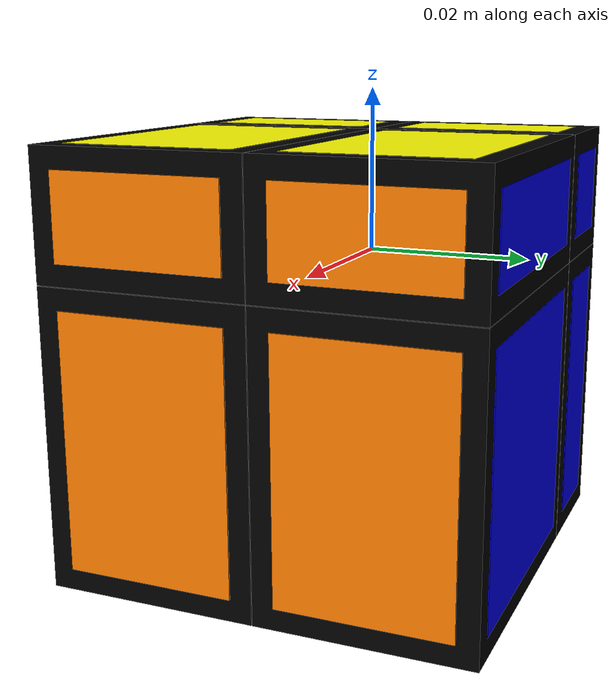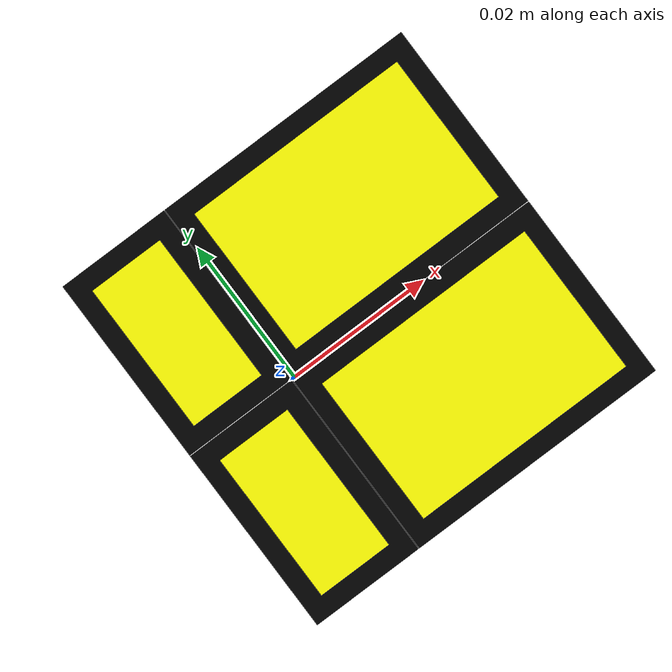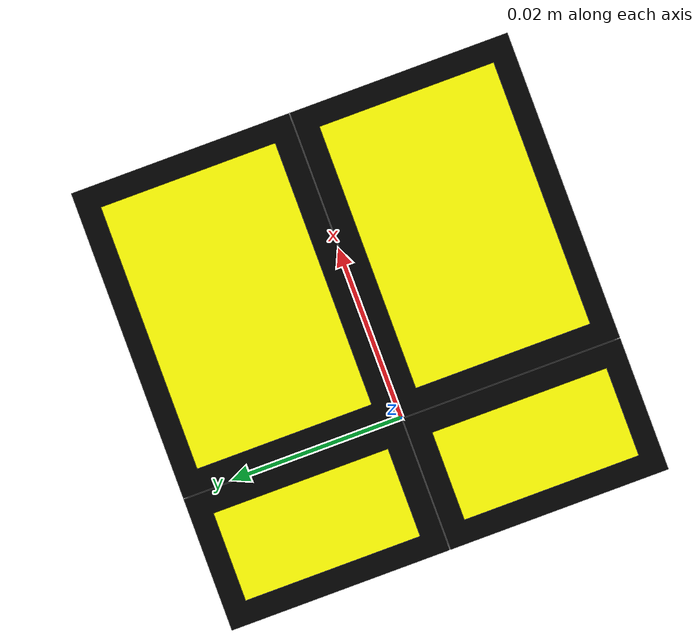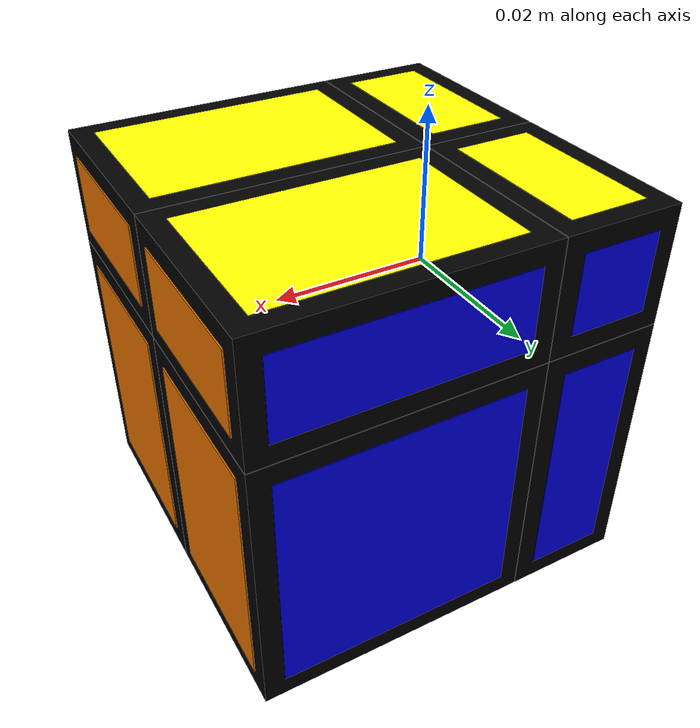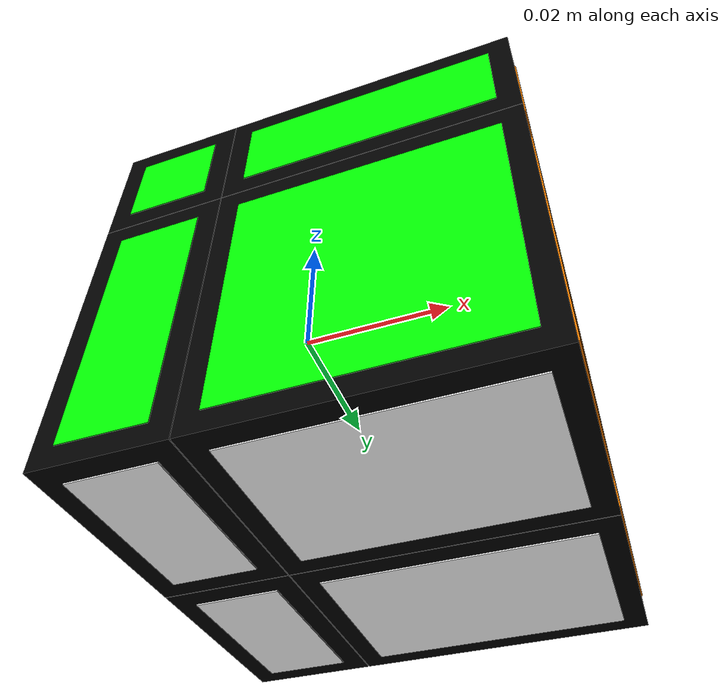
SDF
<?xml version="1.0" ?>
<sdf version="1.7">
	<model name="mirror_cube_2x2">
		<link name="center"/>
		<link name="cubie_0_0_0">
			<pose>-0.00755 -0.01255 -0.017550000000000003 0.0 0.0 0.0</pose>
			<inertial>
				<mass>0.005118750000000002</mass>
				<inertia>
					<ixx>7.891406250000004e-07</ixx>
					<ixy>0.0</ixy>
					<ixz>0.0</ixz>
					<iyy>6.185156250000003e-07</iyy>
					<iyz>0.0</iyz>
					<izz>3.625781250000002e-07</izz>
				</inertia>
			</inertial>
			<collision name="collision">
				<geometry>
					<box>
						<size>0.015000000000000001 0.025 0.035</size>
					</box>
				</geometry>
				<surface>
					<friction>
						<ode>
							<mu>0.6</mu>
							<mu2>0.6</mu2>
						</ode>
					</friction>
				</surface>
			</collision>
			<visual name="black">
				<geometry>
					<box>
						<size>0.015000000000000001 0.025 0.035</size>
					</box>
				</geometry>
				<material>
					<diffuse>0 0 0 1</diffuse>
				</material>
			</visual>
			<visual name="red">
				<pose>-0.007500000000000001 0.0 0.0 0.0 0.0 0.0</pose>
				<geometry>
					<box>
						<size>0.0001 0.02 0.03</size>
					</box>
				</geometry>
				<material>
					<diffuse>1 0 0 1</diffuse>
				</material>
			</visual>
			<visual name="green">
				<pose>0.0 -0.0125 0.0 0.0 0.0 0.0</pose>
				<geometry>
					<box>
						<size>0.01 0.0002 0.03</size>
					</box>
				</geometry>
				<material>
					<diffuse>0 1 0 1</diffuse>
				</material>
			</visual>
			<visual name="white">
				<pose>0.0 0.0 -0.0175 0.0 0.0 0.0</pose>
				<geometry>
					<box>
						<size>0.01 0.02 0.0003</size>
					</box>
				</geometry>
				<material>
					<diffuse>1 1 1 1</diffuse>
				</material>
			</visual>
		</link>
		<joint name="ball_0_0_0" type="ball">
			<pose>0.00755 0.01255 0.017550000000000003 -0.0 -0.0 -0.0</pose>
			<parent>center</parent>
			<child>cubie_0_0_0</child>
			<axis>
				<dynamics>
					<damping>0.1</damping>
				</dynamics>
				<limit>
					<effort>0</effort>
				</limit>
			</axis>
		</joint>
		<link name="cubie_0_0_1">
			<pose>-0.00755 -0.01255 0.007549999999999999 0.0 0.0 0.0</pose>
			<inertial>
				<mass>0.00219375</mass>
				<inertia>
					<ixx>1.55390625e-07</ixx>
					<ixy>0.0</ixy>
					<ixz>0.0</ixz>
					<iyy>8.2265625e-08</iyy>
					<iyz>0.0</iyz>
					<izz>1.5539062500000003e-07</izz>
				</inertia>
			</inertial>
			<collision name="collision">
				<geometry>
					<box>
						<size>0.015000000000000001 0.025 0.015</size>
					</box>
				</geometry>
				<surface>
					<friction>
						<ode>
							<mu>0.6</mu>
							<mu2>0.6</mu2>
						</ode>
					</friction>
				</surface>
			</collision>
			<visual name="black">
				<geometry>
					<box>
						<size>0.015000000000000001 0.025 0.015</size>
					</box>
				</geometry>
				<material>
					<diffuse>0 0 0 1</diffuse>
				</material>
			</visual>
			<visual name="red">
				<pose>-0.007500000000000001 0.0 0.0 0.0 0.0 0.0</pose>
				<geometry>
					<box>
						<size>0.0001 0.02 0.01</size>
					</box>
				</geometry>
				<material>
					<diffuse>1 0 0 1</diffuse>
				</material>
			</visual>
			<visual name="green">
				<pose>0.0 -0.0125 0.0 0.0 0.0 0.0</pose>
				<geometry>
					<box>
						<size>0.01 0.0002 0.01</size>
					</box>
				</geometry>
				<material>
					<diffuse>0 1 0 1</diffuse>
				</material>
			</visual>
			<visual name="yellow">
				<pose>0.0 0.0 0.0075 0.0 0.0 0.0</pose>
				<geometry>
					<box>
						<size>0.01 0.02 0.0001</size>
					</box>
				</geometry>
				<material>
					<diffuse>1 1 0 1</diffuse>
				</material>
			</visual>
		</link>
		<joint name="ball_0_0_1" type="ball">
			<pose>0.00755 0.01255 -0.007549999999999999 -0.0 -0.0 -0.0</pose>
			<parent>center</parent>
			<child>cubie_0_0_1</child>
			<axis>
				<dynamics>
					<damping>0.1</damping>
				</dynamics>
				<limit>
					<effort>0</effort>
				</limit>
			</axis>
		</joint>
		<link name="cubie_0_1_0">
			<pose>-0.00755 0.01255 -0.017550000000000003 0.0 0.0 0.0</pose>
			<inertial>
				<mass>0.005118750000000002</mass>
				<inertia>
					<ixx>7.891406250000004e-07</ixx>
					<ixy>0.0</ixy>
					<ixz>0.0</ixz>
					<iyy>6.185156250000003e-07</iyy>
					<iyz>0.0</iyz>
					<izz>3.625781250000002e-07</izz>
				</inertia>
			</inertial>
			<collision name="collision">
				<geometry>
					<box>
						<size>0.015000000000000001 0.025 0.035</size>
					</box>
				</geometry>
				<surface>
					<friction>
						<ode>
							<mu>0.6</mu>
							<mu2>0.6</mu2>
						</ode>
					</friction>
				</surface>
			</collision>
			<visual name="black">
				<geometry>
					<box>
						<size>0.015000000000000001 0.025 0.035</size>
					</box>
				</geometry>
				<material>
					<diffuse>0 0 0 1</diffuse>
				</material>
			</visual>
			<visual name="red">
				<pose>-0.007500000000000001 0.0 0.0 0.0 0.0 0.0</pose>
				<geometry>
					<box>
						<size>0.0001 0.02 0.03</size>
					</box>
				</geometry>
				<material>
					<diffuse>1 0 0 1</diffuse>
				</material>
			</visual>
			<visual name="blue">
				<pose>0.0 0.0125 0.0 0.0 0.0 0.0</pose>
				<geometry>
					<box>
						<size>0.01 0.0002 0.03</size>
					</box>
				</geometry>
				<material>
					<diffuse>0 0 1 1</diffuse>
				</material>
			</visual>
			<visual name="white">
				<pose>0.0 0.0 -0.0175 0.0 0.0 0.0</pose>
				<geometry>
					<box>
						<size>0.01 0.02 0.0003</size>
					</box>
				</geometry>
				<material>
					<diffuse>1 1 1 1</diffuse>
				</material>
			</visual>
		</link>
		<joint name="ball_0_1_0" type="ball">
			<pose>0.00755 -0.01255 0.017550000000000003 -0.0 -0.0 -0.0</pose>
			<parent>center</parent>
			<child>cubie_0_1_0</child>
			<axis>
				<dynamics>
					<damping>0.1</damping>
				</dynamics>
				<limit>
					<effort>0</effort>
				</limit>
			</axis>
		</joint>
		<link name="cubie_0_1_1">
			<pose>-0.00755 0.01255 0.007549999999999999 0.0 0.0 0.0</pose>
			<inertial>
				<mass>0.00219375</mass>
				<inertia>
					<ixx>1.55390625e-07</ixx>
					<ixy>0.0</ixy>
					<ixz>0.0</ixz>
					<iyy>8.2265625e-08</iyy>
					<iyz>0.0</iyz>
					<izz>1.5539062500000003e-07</izz>
				</inertia>
			</inertial>
			<collision name="collision">
				<geometry>
					<box>
						<size>0.015000000000000001 0.025 0.015</size>
					</box>
				</geometry>
				<surface>
					<friction>
						<ode>
							<mu>0.6</mu>
							<mu2>0.6</mu2>
						</ode>
					</friction>
				</surface>
			</collision>
			<visual name="black">
				<geometry>
					<box>
						<size>0.015000000000000001 0.025 0.015</size>
					</box>
				</geometry>
				<material>
					<diffuse>0 0 0 1</diffuse>
				</material>
			</visual>
			<visual name="red">
				<pose>-0.007500000000000001 0.0 0.0 0.0 0.0 0.0</pose>
				<geometry>
					<box>
						<size>0.0001 0.02 0.01</size>
					</box>
				</geometry>
				<material>
					<diffuse>1 0 0 1</diffuse>
				</material>
			</visual>
			<visual name="blue">
				<pose>0.0 0.0125 0.0 0.0 0.0 0.0</pose>
				<geometry>
					<box>
						<size>0.01 0.0002 0.01</size>
					</box>
				</geometry>
				<material>
					<diffuse>0 0 1 1</diffuse>
				</material>
			</visual>
			<visual name="yellow">
				<pose>0.0 0.0 0.0075 0.0 0.0 0.0</pose>
				<geometry>
					<box>
						<size>0.01 0.02 0.0001</size>
					</box>
				</geometry>
				<material>
					<diffuse>1 1 0 1</diffuse>
				</material>
			</visual>
		</link>
		<joint name="ball_0_1_1" type="ball">
			<pose>0.00755 -0.01255 -0.007549999999999999 -0.0 -0.0 -0.0</pose>
			<parent>center</parent>
			<child>cubie_0_1_1</child>
			<axis>
				<dynamics>
					<damping>0.1</damping>
				</dynamics>
				<limit>
					<effort>0</effort>
				</limit>
			</axis>
		</joint>
		<link name="cubie_1_0_0">
			<pose>0.017550000000000003 -0.01255 -0.017550000000000003 0.0 0.0 0.0</pose>
			<inertial>
				<mass>0.011943750000000003</mass>
				<inertia>
					<ixx>1.841328125000001e-06</ixx>
					<ixy>0.0</ixy>
					<ixz>0.0</ixz>
					<iyy>2.438515625000001e-06</iyy>
					<iyz>0.0</iyz>
					<izz>1.841328125000001e-06</izz>
				</inertia>
			</inertial>
			<collision name="collision">
				<geometry>
					<box>
						<size>0.035 0.025 0.035</size>
					</box>
				</geometry>
				<surface>
					<friction>
						<ode>
							<mu>0.6</mu>
							<mu2>0.6</mu2>
						</ode>
					</friction>
				</surface>
			</collision>
			<visual name="black">
				<geometry>
					<box>
						<size>0.035 0.025 0.035</size>
					</box>
				</geometry>
				<material>
					<diffuse>0 0 0 1</diffuse>
				</material>
			</visual>
			<visual name="orange">
				<pose>0.0175 0.0 0.0 0.0 0.0 0.0</pose>
				<geometry>
					<box>
						<size>0.0003 0.02 0.03</size>
					</box>
				</geometry>
				<material>
					<diffuse>1.0 0.5 0.0 1.0</diffuse>
				</material>
			</visual>
			<visual name="green">
				<pose>0.0 -0.0125 0.0 0.0 0.0 0.0</pose>
				<geometry>
					<box>
						<size>0.03 0.0002 0.03</size>
					</box>
				</geometry>
				<material>
					<diffuse>0 1 0 1</diffuse>
				</material>
			</visual>
			<visual name="white">
				<pose>0.0 0.0 -0.0175 0.0 0.0 0.0</pose>
				<geometry>
					<box>
						<size>0.03 0.02 0.0003</size>
					</box>
				</geometry>
				<material>
					<diffuse>1 1 1 1</diffuse>
				</material>
			</visual>
		</link>
		<joint name="ball_1_0_0" type="ball">
			<pose>-0.017550000000000003 0.01255 0.017550000000000003 -0.0 -0.0 -0.0</pose>
			<parent>center</parent>
			<child>cubie_1_0_0</child>
			<axis>
				<dynamics>
					<damping>0.1</damping>
				</dynamics>
				<limit>
					<effort>0</effort>
				</limit>
			</axis>
		</joint>
		<link name="cubie_1_0_1">
			<pose>0.017550000000000003 -0.01255 0.007549999999999999 0.0 0.0 0.0</pose>
			<inertial>
				<mass>0.005118750000000001</mass>
				<inertia>
					<ixx>3.625781250000001e-07</ixx>
					<ixy>0.0</ixy>
					<ixz>0.0</ixz>
					<iyy>6.185156250000001e-07</iyy>
					<iyz>0.0</iyz>
					<izz>7.891406250000003e-07</izz>
				</inertia>
			</inertial>
			<collision name="collision">
				<geometry>
					<box>
						<size>0.035 0.025 0.015</size>
					</box>
				</geometry>
				<surface>
					<friction>
						<ode>
							<mu>0.6</mu>
							<mu2>0.6</mu2>
						</ode>
					</friction>
				</surface>
			</collision>
			<visual name="black">
				<geometry>
					<box>
						<size>0.035 0.025 0.015</size>
					</box>
				</geometry>
				<material>
					<diffuse>0 0 0 1</diffuse>
				</material>
			</visual>
			<visual name="orange">
				<pose>0.0175 0.0 0.0 0.0 0.0 0.0</pose>
				<geometry>
					<box>
						<size>0.0003 0.02 0.01</size>
					</box>
				</geometry>
				<material>
					<diffuse>1.0 0.5 0.0 1.0</diffuse>
				</material>
			</visual>
			<visual name="green">
				<pose>0.0 -0.0125 0.0 0.0 0.0 0.0</pose>
				<geometry>
					<box>
						<size>0.03 0.0002 0.01</size>
					</box>
				</geometry>
				<material>
					<diffuse>0 1 0 1</diffuse>
				</material>
			</visual>
			<visual name="yellow">
				<pose>0.0 0.0 0.0075 0.0 0.0 0.0</pose>
				<geometry>
					<box>
						<size>0.03 0.02 0.0001</size>
					</box>
				</geometry>
				<material>
					<diffuse>1 1 0 1</diffuse>
				</material>
			</visual>
		</link>
		<joint name="ball_1_0_1" type="ball">
			<pose>-0.017550000000000003 0.01255 -0.007549999999999999 -0.0 -0.0 -0.0</pose>
			<parent>center</parent>
			<child>cubie_1_0_1</child>
			<axis>
				<dynamics>
					<damping>0.1</damping>
				</dynamics>
				<limit>
					<effort>0</effort>
				</limit>
			</axis>
		</joint>
		<link name="cubie_1_1_0">
			<pose>0.017550000000000003 0.01255 -0.017550000000000003 0.0 0.0 0.0</pose>
			<inertial>
				<mass>0.011943750000000003</mass>
				<inertia>
					<ixx>1.841328125000001e-06</ixx>
					<ixy>0.0</ixy>
					<ixz>0.0</ixz>
					<iyy>2.438515625000001e-06</iyy>
					<iyz>0.0</iyz>
					<izz>1.841328125000001e-06</izz>
				</inertia>
			</inertial>
			<collision name="collision">
				<geometry>
					<box>
						<size>0.035 0.025 0.035</size>
					</box>
				</geometry>
				<surface>
					<friction>
						<ode>
							<mu>0.6</mu>
							<mu2>0.6</mu2>
						</ode>
					</friction>
				</surface>
			</collision>
			<visual name="black">
				<geometry>
					<box>
						<size>0.035 0.025 0.035</size>
					</box>
				</geometry>
				<material>
					<diffuse>0 0 0 1</diffuse>
				</material>
			</visual>
			<visual name="orange">
				<pose>0.0175 0.0 0.0 0.0 0.0 0.0</pose>
				<geometry>
					<box>
						<size>0.0003 0.02 0.03</size>
					</box>
				</geometry>
				<material>
					<diffuse>1.0 0.5 0.0 1.0</diffuse>
				</material>
			</visual>
			<visual name="blue">
				<pose>0.0 0.0125 0.0 0.0 0.0 0.0</pose>
				<geometry>
					<box>
						<size>0.03 0.0002 0.03</size>
					</box>
				</geometry>
				<material>
					<diffuse>0 0 1 1</diffuse>
				</material>
			</visual>
			<visual name="white">
				<pose>0.0 0.0 -0.0175 0.0 0.0 0.0</pose>
				<geometry>
					<box>
						<size>0.03 0.02 0.0003</size>
					</box>
				</geometry>
				<material>
					<diffuse>1 1 1 1</diffuse>
				</material>
			</visual>
		</link>
		<joint name="ball_1_1_0" type="ball">
			<pose>-0.017550000000000003 -0.01255 0.017550000000000003 -0.0 -0.0 -0.0</pose>
			<parent>center</parent>
			<child>cubie_1_1_0</child>
			<axis>
				<dynamics>
					<damping>0.1</damping>
				</dynamics>
				<limit>
					<effort>0</effort>
				</limit>
			</axis>
		</joint>
		<link name="cubie_1_1_1">
			<pose>0.017550000000000003 0.01255 0.007549999999999999 0.0 0.0 0.0</pose>
			<inertial>
				<mass>0.005118750000000001</mass>
				<inertia>
					<ixx>3.625781250000001e-07</ixx>
					<ixy>0.0</ixy>
					<ixz>0.0</ixz>
					<iyy>6.185156250000001e-07</iyy>
					<iyz>0.0</iyz>
					<izz>7.891406250000003e-07</izz>
				</inertia>
			</inertial>
			<collision name="collision">
				<geometry>
					<box>
						<size>0.035 0.025 0.015</size>
					</box>
				</geometry>
				<surface>
					<friction>
						<ode>
							<mu>0.6</mu>
							<mu2>0.6</mu2>
						</ode>
					</friction>
				</surface>
			</collision>
			<visual name="black">
				<geometry>
					<box>
						<size>0.035 0.025 0.015</size>
					</box>
				</geometry>
				<material>
					<diffuse>0 0 0 1</diffuse>
				</material>
			</visual>
			<visual name="orange">
				<pose>0.0175 0.0 0.0 0.0 0.0 0.0</pose>
				<geometry>
					<box>
						<size>0.0003 0.02 0.01</size>
					</box>
				</geometry>
				<material>
					<diffuse>1.0 0.5 0.0 1.0</diffuse>
				</material>
			</visual>
			<visual name="blue">
				<pose>0.0 0.0125 0.0 0.0 0.0 0.0</pose>
				<geometry>
					<box>
						<size>0.03 0.0002 0.01</size>
					</box>
				</geometry>
				<material>
					<diffuse>0 0 1 1</diffuse>
				</material>
			</visual>
			<visual name="yellow">
				<pose>0.0 0.0 0.0075 0.0 0.0 0.0</pose>
				<geometry>
					<box>
						<size>0.03 0.02 0.0001</size>
					</box>
				</geometry>
				<material>
					<diffuse>1 1 0 1</diffuse>
				</material>
			</visual>
		</link>
		<joint name="ball_1_1_1" type="ball">
			<pose>-0.017550000000000003 -0.01255 -0.007549999999999999 -0.0 -0.0 -0.0</pose>
			<parent>center</parent>
			<child>cubie_1_1_1</child>
			<axis>
				<dynamics>
					<damping>0.1</damping>
				</dynamics>
				<limit>
					<effort>0</effort>
				</limit>
			</axis>
		</joint>
	</model>
</sdf>
